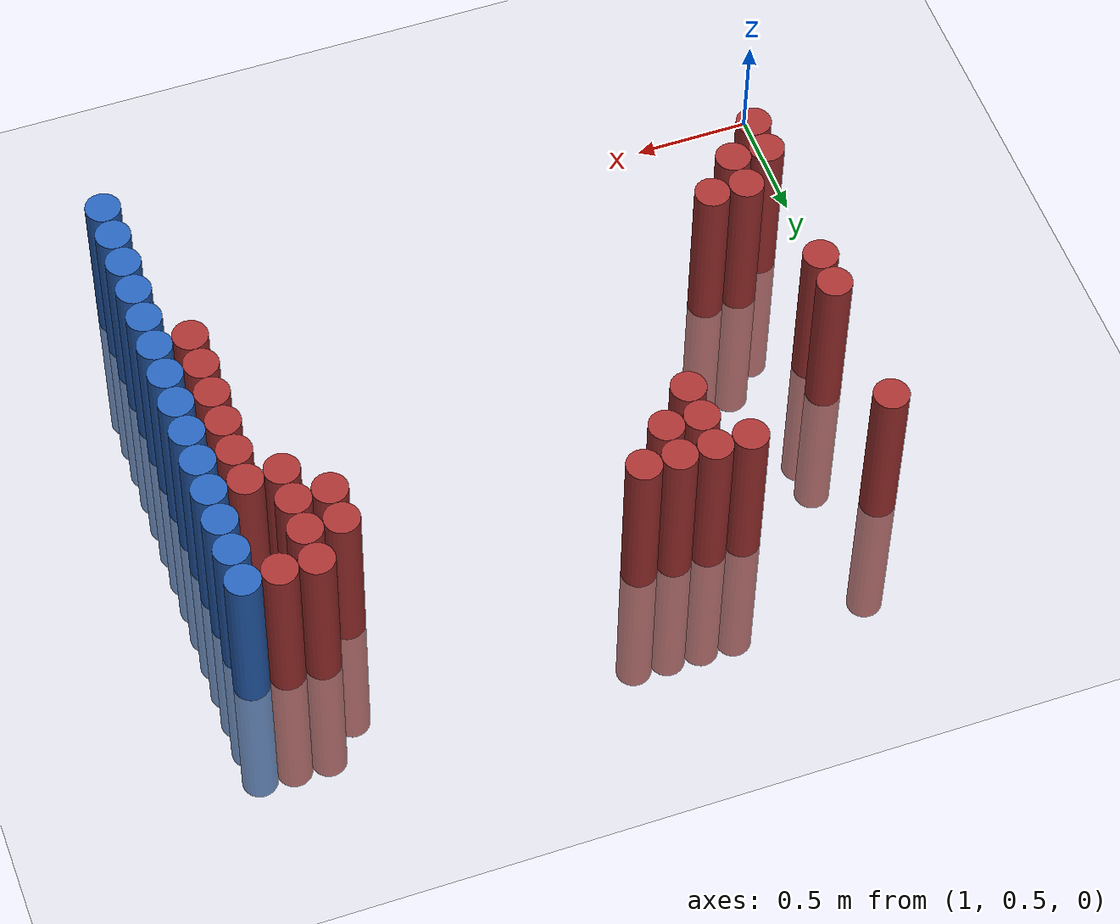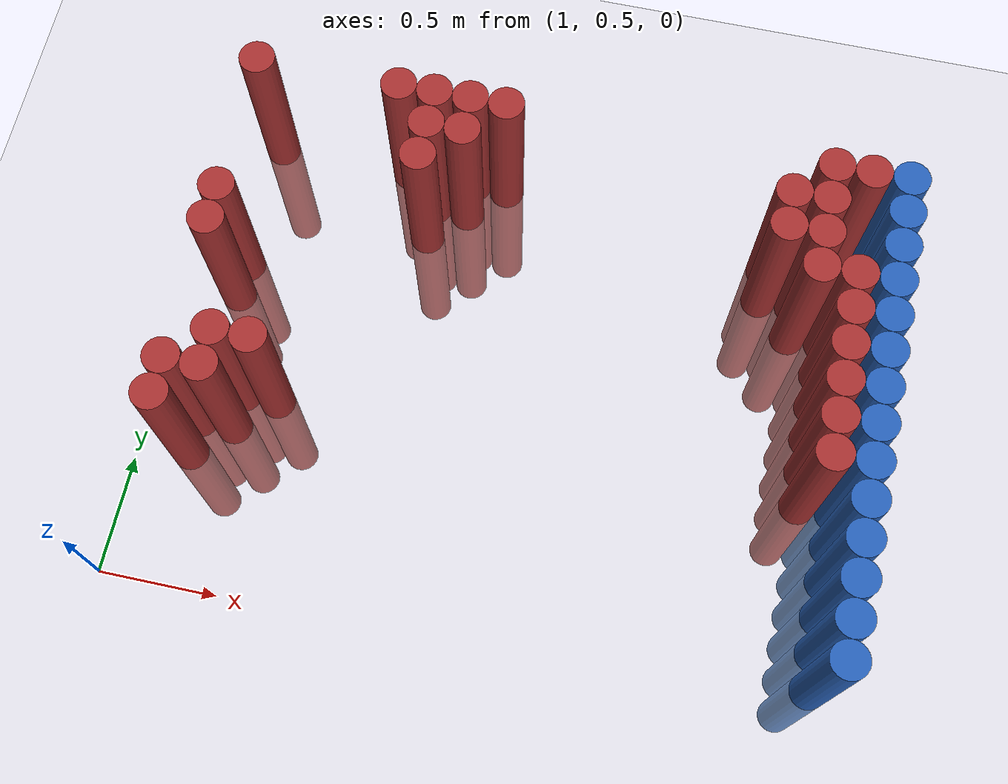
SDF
<sdf version="1.6">
 <world name="default">
  <model name="ground_plane">
   <static>1</static>
   <link name="link">
    <collision name="collision">
     <geometry><plane><normal>0 0 1</normal><size>100 100</size></plane></geometry>
     <surface><friction><ode><mu>100</mu><mu2>50</mu2></ode></friction></surface>
    </collision>
    <visual name="visual">
     <cast_shadows>0</cast_shadows>
     <geometry><plane><normal>0 0 1</normal><size>100 100</size></plane></geometry>
     <material>
      <script><uri>file://media/materials/scripts/gazebo.material</uri><name>Gazebo/Grey</name></script>
     </material>
    </visual>
   </link>
  </model>
  <model name="unit_cylinder_124">
   <static>1</static>
   <pose>3.925000 0.775000 0.000000 0.000000 0.000000 0.000000</pose>
   <link name="link">
    <inertial>
     <mass>1</mass>
     <inertia><ixx>0.145833</ixx><ixy>0</ixy><ixz>0</ixz><iyy>0.145833</iyy><iyz>0</iyz><izz>0.125</izz></inertia>
    </inertial>
    <collision name="collision">
     <geometry><cylinder><radius>0.075000</radius><length>1.5</length></cylinder></geometry>
    </collision>
    <visual name="visual">
     <geometry><cylinder><radius>0.075000</radius><length>1.5</length></cylinder></geometry>
     <material>
      <ambient>0.152000 0.379000 0.720000 1</ambient>
      <diffuse>0.152000 0.379000 0.720000 1</diffuse>
     </material>
     <material>
      <script><name>Gazebo/Grey</name><uri>file://media/materials/scripts/gazebo.material</uri></script>
     </material>
    </visual>
   </link>
  </model>
  <model name="unit_cylinder_126">
   <static>1</static>
   <pose>3.925000 0.925000 0.000000 0.000000 0.000000 0.000000</pose>
   <link name="link">
    <inertial>
     <mass>1</mass>
     <inertia><ixx>0.145833</ixx><ixy>0</ixy><ixz>0</ixz><iyy>0.145833</iyy><iyz>0</iyz><izz>0.125</izz></inertia>
    </inertial>
    <collision name="collision">
     <geometry><cylinder><radius>0.075000</radius><length>1.5</length></cylinder></geometry>
    </collision>
    <visual name="visual">
     <geometry><cylinder><radius>0.075000</radius><length>1.5</length></cylinder></geometry>
     <material>
      <ambient>0.152000 0.379000 0.720000 1</ambient>
      <diffuse>0.152000 0.379000 0.720000 1</diffuse>
     </material>
     <material>
      <script><name>Gazebo/Grey</name><uri>file://media/materials/scripts/gazebo.material</uri></script>
     </material>
    </visual>
   </link>
  </model>
  <model name="unit_cylinder_128">
   <static>1</static>
   <pose>3.925000 1.075000 0.000000 0.000000 0.000000 0.000000</pose>
   <link name="link">
    <inertial>
     <mass>1</mass>
     <inertia><ixx>0.145833</ixx><ixy>0</ixy><ixz>0</ixz><iyy>0.145833</iyy><iyz>0</iyz><izz>0.125</izz></inertia>
    </inertial>
    <collision name="collision">
     <geometry><cylinder><radius>0.075000</radius><length>1.5</length></cylinder></geometry>
    </collision>
    <visual name="visual">
     <geometry><cylinder><radius>0.075000</radius><length>1.5</length></cylinder></geometry>
     <material>
      <ambient>0.152000 0.379000 0.720000 1</ambient>
      <diffuse>0.152000 0.379000 0.720000 1</diffuse>
     </material>
     <material>
      <script><name>Gazebo/Grey</name><uri>file://media/materials/scripts/gazebo.material</uri></script>
     </material>
    </visual>
   </link>
  </model>
  <model name="unit_cylinder_130">
   <static>1</static>
   <pose>3.925000 1.225000 0.000000 0.000000 0.000000 0.000000</pose>
   <link name="link">
    <inertial>
     <mass>1</mass>
     <inertia><ixx>0.145833</ixx><ixy>0</ixy><ixz>0</ixz><iyy>0.145833</iyy><iyz>0</iyz><izz>0.125</izz></inertia>
    </inertial>
    <collision name="collision">
     <geometry><cylinder><radius>0.075000</radius><length>1.5</length></cylinder></geometry>
    </collision>
    <visual name="visual">
     <geometry><cylinder><radius>0.075000</radius><length>1.5</length></cylinder></geometry>
     <material>
      <ambient>0.152000 0.379000 0.720000 1</ambient>
      <diffuse>0.152000 0.379000 0.720000 1</diffuse>
     </material>
     <material>
      <script><name>Gazebo/Grey</name><uri>file://media/materials/scripts/gazebo.material</uri></script>
     </material>
    </visual>
   </link>
  </model>
  <model name="unit_cylinder_132">
   <static>1</static>
   <pose>3.925000 1.375000 0.000000 0.000000 0.000000 0.000000</pose>
   <link name="link">
    <inertial>
     <mass>1</mass>
     <inertia><ixx>0.145833</ixx><ixy>0</ixy><ixz>0</ixz><iyy>0.145833</iyy><iyz>0</iyz><izz>0.125</izz></inertia>
    </inertial>
    <collision name="collision">
     <geometry><cylinder><radius>0.075000</radius><length>1.5</length></cylinder></geometry>
    </collision>
    <visual name="visual">
     <geometry><cylinder><radius>0.075000</radius><length>1.5</length></cylinder></geometry>
     <material>
      <ambient>0.152000 0.379000 0.720000 1</ambient>
      <diffuse>0.152000 0.379000 0.720000 1</diffuse>
     </material>
     <material>
      <script><name>Gazebo/Grey</name><uri>file://media/materials/scripts/gazebo.material</uri></script>
     </material>
    </visual>
   </link>
  </model>
  <model name="unit_cylinder_134">
   <static>1</static>
   <pose>3.925000 1.525000 0.000000 0.000000 0.000000 0.000000</pose>
   <link name="link">
    <inertial>
     <mass>1</mass>
     <inertia><ixx>0.145833</ixx><ixy>0</ixy><ixz>0</ixz><iyy>0.145833</iyy><iyz>0</iyz><izz>0.125</izz></inertia>
    </inertial>
    <collision name="collision">
     <geometry><cylinder><radius>0.075000</radius><length>1.5</length></cylinder></geometry>
    </collision>
    <visual name="visual">
     <geometry><cylinder><radius>0.075000</radius><length>1.5</length></cylinder></geometry>
     <material>
      <ambient>0.152000 0.379000 0.720000 1</ambient>
      <diffuse>0.152000 0.379000 0.720000 1</diffuse>
     </material>
     <material>
      <script><name>Gazebo/Grey</name><uri>file://media/materials/scripts/gazebo.material</uri></script>
     </material>
    </visual>
   </link>
  </model>
  <model name="unit_cylinder_136">
   <static>1</static>
   <pose>3.925000 1.675000 0.000000 0.000000 0.000000 0.000000</pose>
   <link name="link">
    <inertial>
     <mass>1</mass>
     <inertia><ixx>0.145833</ixx><ixy>0</ixy><ixz>0</ixz><iyy>0.145833</iyy><iyz>0</iyz><izz>0.125</izz></inertia>
    </inertial>
    <collision name="collision">
     <geometry><cylinder><radius>0.075000</radius><length>1.5</length></cylinder></geometry>
    </collision>
    <visual name="visual">
     <geometry><cylinder><radius>0.075000</radius><length>1.5</length></cylinder></geometry>
     <material>
      <ambient>0.152000 0.379000 0.720000 1</ambient>
      <diffuse>0.152000 0.379000 0.720000 1</diffuse>
     </material>
     <material>
      <script><name>Gazebo/Grey</name><uri>file://media/materials/scripts/gazebo.material</uri></script>
     </material>
    </visual>
   </link>
  </model>
  <model name="unit_cylinder_138">
   <static>1</static>
   <pose>3.925000 1.825000 0.000000 0.000000 0.000000 0.000000</pose>
   <link name="link">
    <inertial>
     <mass>1</mass>
     <inertia><ixx>0.145833</ixx><ixy>0</ixy><ixz>0</ixz><iyy>0.145833</iyy><iyz>0</iyz><izz>0.125</izz></inertia>
    </inertial>
    <collision name="collision">
     <geometry><cylinder><radius>0.075000</radius><length>1.5</length></cylinder></geometry>
    </collision>
    <visual name="visual">
     <geometry><cylinder><radius>0.075000</radius><length>1.5</length></cylinder></geometry>
     <material>
      <ambient>0.152000 0.379000 0.720000 1</ambient>
      <diffuse>0.152000 0.379000 0.720000 1</diffuse>
     </material>
     <material>
      <script><name>Gazebo/Grey</name><uri>file://media/materials/scripts/gazebo.material</uri></script>
     </material>
    </visual>
   </link>
  </model>
  <model name="unit_cylinder_140">
   <static>1</static>
   <pose>3.925000 1.975000 0.000000 0.000000 0.000000 0.000000</pose>
   <link name="link">
    <inertial>
     <mass>1</mass>
     <inertia><ixx>0.145833</ixx><ixy>0</ixy><ixz>0</ixz><iyy>0.145833</iyy><iyz>0</iyz><izz>0.125</izz></inertia>
    </inertial>
    <collision name="collision">
     <geometry><cylinder><radius>0.075000</radius><length>1.5</length></cylinder></geometry>
    </collision>
    <visual name="visual">
     <geometry><cylinder><radius>0.075000</radius><length>1.5</length></cylinder></geometry>
     <material>
      <ambient>0.152000 0.379000 0.720000 1</ambient>
      <diffuse>0.152000 0.379000 0.720000 1</diffuse>
     </material>
     <material>
      <script><name>Gazebo/Grey</name><uri>file://media/materials/scripts/gazebo.material</uri></script>
     </material>
    </visual>
   </link>
  </model>
  <model name="unit_cylinder_142">
   <static>1</static>
   <pose>3.925000 2.125000 0.000000 0.000000 0.000000 0.000000</pose>
   <link name="link">
    <inertial>
     <mass>1</mass>
     <inertia><ixx>0.145833</ixx><ixy>0</ixy><ixz>0</ixz><iyy>0.145833</iyy><iyz>0</iyz><izz>0.125</izz></inertia>
    </inertial>
    <collision name="collision">
     <geometry><cylinder><radius>0.075000</radius><length>1.5</length></cylinder></geometry>
    </collision>
    <visual name="visual">
     <geometry><cylinder><radius>0.075000</radius><length>1.5</length></cylinder></geometry>
     <material>
      <ambient>0.152000 0.379000 0.720000 1</ambient>
      <diffuse>0.152000 0.379000 0.720000 1</diffuse>
     </material>
     <material>
      <script><name>Gazebo/Grey</name><uri>file://media/materials/scripts/gazebo.material</uri></script>
     </material>
    </visual>
   </link>
  </model>
  <model name="unit_cylinder_144">
   <static>1</static>
   <pose>3.925000 2.275000 0.000000 0.000000 0.000000 0.000000</pose>
   <link name="link">
    <inertial>
     <mass>1</mass>
     <inertia><ixx>0.145833</ixx><ixy>0</ixy><ixz>0</ixz><iyy>0.145833</iyy><iyz>0</iyz><izz>0.125</izz></inertia>
    </inertial>
    <collision name="collision">
     <geometry><cylinder><radius>0.075000</radius><length>1.5</length></cylinder></geometry>
    </collision>
    <visual name="visual">
     <geometry><cylinder><radius>0.075000</radius><length>1.5</length></cylinder></geometry>
     <material>
      <ambient>0.152000 0.379000 0.720000 1</ambient>
      <diffuse>0.152000 0.379000 0.720000 1</diffuse>
     </material>
     <material>
      <script><name>Gazebo/Grey</name><uri>file://media/materials/scripts/gazebo.material</uri></script>
     </material>
    </visual>
   </link>
  </model>
  <model name="unit_cylinder_146">
   <static>1</static>
   <pose>3.925000 2.425000 0.000000 0.000000 0.000000 0.000000</pose>
   <link name="link">
    <inertial>
     <mass>1</mass>
     <inertia><ixx>0.145833</ixx><ixy>0</ixy><ixz>0</ixz><iyy>0.145833</iyy><iyz>0</iyz><izz>0.125</izz></inertia>
    </inertial>
    <collision name="collision">
     <geometry><cylinder><radius>0.075000</radius><length>1.5</length></cylinder></geometry>
    </collision>
    <visual name="visual">
     <geometry><cylinder><radius>0.075000</radius><length>1.5</length></cylinder></geometry>
     <material>
      <ambient>0.152000 0.379000 0.720000 1</ambient>
      <diffuse>0.152000 0.379000 0.720000 1</diffuse>
     </material>
     <material>
      <script><name>Gazebo/Grey</name><uri>file://media/materials/scripts/gazebo.material</uri></script>
     </material>
    </visual>
   </link>
  </model>
  <model name="unit_cylinder_148">
   <static>1</static>
   <pose>3.925000 2.575000 0.000000 0.000000 0.000000 0.000000</pose>
   <link name="link">
    <inertial>
     <mass>1</mass>
     <inertia><ixx>0.145833</ixx><ixy>0</ixy><ixz>0</ixz><iyy>0.145833</iyy><iyz>0</iyz><izz>0.125</izz></inertia>
    </inertial>
    <collision name="collision">
     <geometry><cylinder><radius>0.075000</radius><length>1.5</length></cylinder></geometry>
    </collision>
    <visual name="visual">
     <geometry><cylinder><radius>0.075000</radius><length>1.5</length></cylinder></geometry>
     <material>
      <ambient>0.152000 0.379000 0.720000 1</ambient>
      <diffuse>0.152000 0.379000 0.720000 1</diffuse>
     </material>
     <material>
      <script><name>Gazebo/Grey</name><uri>file://media/materials/scripts/gazebo.material</uri></script>
     </material>
    </visual>
   </link>
  </model>
  <model name="unit_cylinder_449">
   <static>1</static>
   <pose>1.225000 1.075000 0.000000 0.000000 0.000000 0.000000</pose>
   <link name="link">
    <inertial>
     <mass>1</mass>
     <inertia><ixx>0.145833</ixx><ixy>0</ixy><ixz>0</ixz><iyy>0.145833</iyy><iyz>0</iyz><izz>0.125</izz></inertia>
    </inertial>
    <collision name="collision">
     <geometry><cylinder><radius>0.075000</radius><length>1.5</length></cylinder></geometry>
    </collision>
    <visual name="visual">
     <geometry><cylinder><radius>0.075000</radius><length>1.5</length></cylinder></geometry>
     <material>
      <ambient>0.648000 0.192000 0.192000 1</ambient>
      <diffuse>0.648000 0.192000 0.192000 1</diffuse>
     </material>
     <material>
      <script><name>Gazebo/Grey</name><uri>file://media/materials/scripts/gazebo.material</uri></script>
     </material>
    </visual>
   </link>
  </model>
  <model name="unit_cylinder_450">
   <static>1</static>
   <pose>1.225000 1.225000 0.000000 0.000000 0.000000 0.000000</pose>
   <link name="link">
    <inertial>
     <mass>1</mass>
     <inertia><ixx>0.145833</ixx><ixy>0</ixy><ixz>0</ixz><iyy>0.145833</iyy><iyz>0</iyz><izz>0.125</izz></inertia>
    </inertial>
    <collision name="collision">
     <geometry><cylinder><radius>0.075000</radius><length>1.5</length></cylinder></geometry>
    </collision>
    <visual name="visual">
     <geometry><cylinder><radius>0.075000</radius><length>1.5</length></cylinder></geometry>
     <material>
      <ambient>0.648000 0.192000 0.192000 1</ambient>
      <diffuse>0.648000 0.192000 0.192000 1</diffuse>
     </material>
     <material>
      <script><name>Gazebo/Grey</name><uri>file://media/materials/scripts/gazebo.material</uri></script>
     </material>
    </visual>
   </link>
  </model>
  <model name="unit_cylinder_451">
   <static>1</static>
   <pose>1.225000 1.825000 0.000000 0.000000 0.000000 0.000000</pose>
   <link name="link">
    <inertial>
     <mass>1</mass>
     <inertia><ixx>0.145833</ixx><ixy>0</ixy><ixz>0</ixz><iyy>0.145833</iyy><iyz>0</iyz><izz>0.125</izz></inertia>
    </inertial>
    <collision name="collision">
     <geometry><cylinder><radius>0.075000</radius><length>1.5</length></cylinder></geometry>
    </collision>
    <visual name="visual">
     <geometry><cylinder><radius>0.075000</radius><length>1.5</length></cylinder></geometry>
     <material>
      <ambient>0.648000 0.192000 0.192000 1</ambient>
      <diffuse>0.648000 0.192000 0.192000 1</diffuse>
     </material>
     <material>
      <script><name>Gazebo/Grey</name><uri>file://media/materials/scripts/gazebo.material</uri></script>
     </material>
    </visual>
   </link>
  </model>
  <model name="unit_cylinder_452">
   <static>1</static>
   <pose>1.225000 1.975000 0.000000 0.000000 0.000000 0.000000</pose>
   <link name="link">
    <inertial>
     <mass>1</mass>
     <inertia><ixx>0.145833</ixx><ixy>0</ixy><ixz>0</ixz><iyy>0.145833</iyy><iyz>0</iyz><izz>0.125</izz></inertia>
    </inertial>
    <collision name="collision">
     <geometry><cylinder><radius>0.075000</radius><length>1.5</length></cylinder></geometry>
    </collision>
    <visual name="visual">
     <geometry><cylinder><radius>0.075000</radius><length>1.5</length></cylinder></geometry>
     <material>
      <ambient>0.648000 0.192000 0.192000 1</ambient>
      <diffuse>0.648000 0.192000 0.192000 1</diffuse>
     </material>
     <material>
      <script><name>Gazebo/Grey</name><uri>file://media/materials/scripts/gazebo.material</uri></script>
     </material>
    </visual>
   </link>
  </model>
  <model name="unit_cylinder_453">
   <static>1</static>
   <pose>1.225000 2.575000 0.000000 0.000000 0.000000 0.000000</pose>
   <link name="link">
    <inertial>
     <mass>1</mass>
     <inertia><ixx>0.145833</ixx><ixy>0</ixy><ixz>0</ixz><iyy>0.145833</iyy><iyz>0</iyz><izz>0.125</izz></inertia>
    </inertial>
    <collision name="collision">
     <geometry><cylinder><radius>0.075000</radius><length>1.5</length></cylinder></geometry>
    </collision>
    <visual name="visual">
     <geometry><cylinder><radius>0.075000</radius><length>1.5</length></cylinder></geometry>
     <material>
      <ambient>0.648000 0.192000 0.192000 1</ambient>
      <diffuse>0.648000 0.192000 0.192000 1</diffuse>
     </material>
     <material>
      <script><name>Gazebo/Grey</name><uri>file://media/materials/scripts/gazebo.material</uri></script>
     </material>
    </visual>
   </link>
  </model>
  <model name="unit_cylinder_461">
   <static>1</static>
   <pose>1.375000 1.225000 0.000000 0.000000 0.000000 0.000000</pose>
   <link name="link">
    <inertial>
     <mass>1</mass>
     <inertia><ixx>0.145833</ixx><ixy>0</ixy><ixz>0</ixz><iyy>0.145833</iyy><iyz>0</iyz><izz>0.125</izz></inertia>
    </inertial>
    <collision name="collision">
     <geometry><cylinder><radius>0.075000</radius><length>1.5</length></cylinder></geometry>
    </collision>
    <visual name="visual">
     <geometry><cylinder><radius>0.075000</radius><length>1.5</length></cylinder></geometry>
     <material>
      <ambient>0.648000 0.192000 0.192000 1</ambient>
      <diffuse>0.648000 0.192000 0.192000 1</diffuse>
     </material>
     <material>
      <script><name>Gazebo/Grey</name><uri>file://media/materials/scripts/gazebo.material</uri></script>
     </material>
    </visual>
   </link>
  </model>
  <model name="unit_cylinder_462">
   <static>1</static>
   <pose>1.375000 1.375000 0.000000 0.000000 0.000000 0.000000</pose>
   <link name="link">
    <inertial>
     <mass>1</mass>
     <inertia><ixx>0.145833</ixx><ixy>0</ixy><ixz>0</ixz><iyy>0.145833</iyy><iyz>0</iyz><izz>0.125</izz></inertia>
    </inertial>
    <collision name="collision">
     <geometry><cylinder><radius>0.075000</radius><length>1.5</length></cylinder></geometry>
    </collision>
    <visual name="visual">
     <geometry><cylinder><radius>0.075000</radius><length>1.5</length></cylinder></geometry>
     <material>
      <ambient>0.648000 0.192000 0.192000 1</ambient>
      <diffuse>0.648000 0.192000 0.192000 1</diffuse>
     </material>
     <material>
      <script><name>Gazebo/Grey</name><uri>file://media/materials/scripts/gazebo.material</uri></script>
     </material>
    </visual>
   </link>
  </model>
  <model name="unit_cylinder_472">
   <static>1</static>
   <pose>1.525000 1.375000 0.000000 0.000000 0.000000 0.000000</pose>
   <link name="link">
    <inertial>
     <mass>1</mass>
     <inertia><ixx>0.145833</ixx><ixy>0</ixy><ixz>0</ixz><iyy>0.145833</iyy><iyz>0</iyz><izz>0.125</izz></inertia>
    </inertial>
    <collision name="collision">
     <geometry><cylinder><radius>0.075000</radius><length>1.5</length></cylinder></geometry>
    </collision>
    <visual name="visual">
     <geometry><cylinder><radius>0.075000</radius><length>1.5</length></cylinder></geometry>
     <material>
      <ambient>0.648000 0.192000 0.192000 1</ambient>
      <diffuse>0.648000 0.192000 0.192000 1</diffuse>
     </material>
     <material>
      <script><name>Gazebo/Grey</name><uri>file://media/materials/scripts/gazebo.material</uri></script>
     </material>
    </visual>
   </link>
  </model>
  <model name="unit_cylinder_480">
   <static>1</static>
   <pose>1.825000 2.575000 0.000000 0.000000 0.000000 0.000000</pose>
   <link name="link">
    <inertial>
     <mass>1</mass>
     <inertia><ixx>0.145833</ixx><ixy>0</ixy><ixz>0</ixz><iyy>0.145833</iyy><iyz>0</iyz><izz>0.125</izz></inertia>
    </inertial>
    <collision name="collision">
     <geometry><cylinder><radius>0.075000</radius><length>1.5</length></cylinder></geometry>
    </collision>
    <visual name="visual">
     <geometry><cylinder><radius>0.075000</radius><length>1.5</length></cylinder></geometry>
     <material>
      <ambient>0.648000 0.192000 0.192000 1</ambient>
      <diffuse>0.648000 0.192000 0.192000 1</diffuse>
     </material>
     <material>
      <script><name>Gazebo/Grey</name><uri>file://media/materials/scripts/gazebo.material</uri></script>
     </material>
    </visual>
   </link>
  </model>
  <model name="unit_cylinder_485">
   <static>1</static>
   <pose>1.975000 2.275000 0.000000 0.000000 0.000000 0.000000</pose>
   <link name="link">
    <inertial>
     <mass>1</mass>
     <inertia><ixx>0.145833</ixx><ixy>0</ixy><ixz>0</ixz><iyy>0.145833</iyy><iyz>0</iyz><izz>0.125</izz></inertia>
    </inertial>
    <collision name="collision">
     <geometry><cylinder><radius>0.075000</radius><length>1.5</length></cylinder></geometry>
    </collision>
    <visual name="visual">
     <geometry><cylinder><radius>0.075000</radius><length>1.5</length></cylinder></geometry>
     <material>
      <ambient>0.648000 0.192000 0.192000 1</ambient>
      <diffuse>0.648000 0.192000 0.192000 1</diffuse>
     </material>
     <material>
      <script><name>Gazebo/Grey</name><uri>file://media/materials/scripts/gazebo.material</uri></script>
     </material>
    </visual>
   </link>
  </model>
  <model name="unit_cylinder_486">
   <static>1</static>
   <pose>1.975000 2.425000 0.000000 0.000000 0.000000 0.000000</pose>
   <link name="link">
    <inertial>
     <mass>1</mass>
     <inertia><ixx>0.145833</ixx><ixy>0</ixy><ixz>0</ixz><iyy>0.145833</iyy><iyz>0</iyz><izz>0.125</izz></inertia>
    </inertial>
    <collision name="collision">
     <geometry><cylinder><radius>0.075000</radius><length>1.5</length></cylinder></geometry>
    </collision>
    <visual name="visual">
     <geometry><cylinder><radius>0.075000</radius><length>1.5</length></cylinder></geometry>
     <material>
      <ambient>0.648000 0.192000 0.192000 1</ambient>
      <diffuse>0.648000 0.192000 0.192000 1</diffuse>
     </material>
     <material>
      <script><name>Gazebo/Grey</name><uri>file://media/materials/scripts/gazebo.material</uri></script>
     </material>
    </visual>
   </link>
  </model>
  <model name="unit_cylinder_487">
   <static>1</static>
   <pose>1.975000 2.575000 0.000000 0.000000 0.000000 0.000000</pose>
   <link name="link">
    <inertial>
     <mass>1</mass>
     <inertia><ixx>0.145833</ixx><ixy>0</ixy><ixz>0</ixz><iyy>0.145833</iyy><iyz>0</iyz><izz>0.125</izz></inertia>
    </inertial>
    <collision name="collision">
     <geometry><cylinder><radius>0.075000</radius><length>1.5</length></cylinder></geometry>
    </collision>
    <visual name="visual">
     <geometry><cylinder><radius>0.075000</radius><length>1.5</length></cylinder></geometry>
     <material>
      <ambient>0.648000 0.192000 0.192000 1</ambient>
      <diffuse>0.648000 0.192000 0.192000 1</diffuse>
     </material>
     <material>
      <script><name>Gazebo/Grey</name><uri>file://media/materials/scripts/gazebo.material</uri></script>
     </material>
    </visual>
   </link>
  </model>
  <model name="unit_cylinder_489">
   <static>1</static>
   <pose>2.125000 2.425000 0.000000 0.000000 0.000000 0.000000</pose>
   <link name="link">
    <inertial>
     <mass>1</mass>
     <inertia><ixx>0.145833</ixx><ixy>0</ixy><ixz>0</ixz><iyy>0.145833</iyy><iyz>0</iyz><izz>0.125</izz></inertia>
    </inertial>
    <collision name="collision">
     <geometry><cylinder><radius>0.075000</radius><length>1.5</length></cylinder></geometry>
    </collision>
    <visual name="visual">
     <geometry><cylinder><radius>0.075000</radius><length>1.5</length></cylinder></geometry>
     <material>
      <ambient>0.648000 0.192000 0.192000 1</ambient>
      <diffuse>0.648000 0.192000 0.192000 1</diffuse>
     </material>
     <material>
      <script><name>Gazebo/Grey</name><uri>file://media/materials/scripts/gazebo.material</uri></script>
     </material>
    </visual>
   </link>
  </model>
  <model name="unit_cylinder_490">
   <static>1</static>
   <pose>2.125000 2.575000 0.000000 0.000000 0.000000 0.000000</pose>
   <link name="link">
    <inertial>
     <mass>1</mass>
     <inertia><ixx>0.145833</ixx><ixy>0</ixy><ixz>0</ixz><iyy>0.145833</iyy><iyz>0</iyz><izz>0.125</izz></inertia>
    </inertial>
    <collision name="collision">
     <geometry><cylinder><radius>0.075000</radius><length>1.5</length></cylinder></geometry>
    </collision>
    <visual name="visual">
     <geometry><cylinder><radius>0.075000</radius><length>1.5</length></cylinder></geometry>
     <material>
      <ambient>0.648000 0.192000 0.192000 1</ambient>
      <diffuse>0.648000 0.192000 0.192000 1</diffuse>
     </material>
     <material>
      <script><name>Gazebo/Grey</name><uri>file://media/materials/scripts/gazebo.material</uri></script>
     </material>
    </visual>
   </link>
  </model>
  <model name="unit_cylinder_498">
   <static>1</static>
   <pose>2.275000 2.575000 0.000000 0.000000 0.000000 0.000000</pose>
   <link name="link">
    <inertial>
     <mass>1</mass>
     <inertia><ixx>0.145833</ixx><ixy>0</ixy><ixz>0</ixz><iyy>0.145833</iyy><iyz>0</iyz><izz>0.125</izz></inertia>
    </inertial>
    <collision name="collision">
     <geometry><cylinder><radius>0.075000</radius><length>1.5</length></cylinder></geometry>
    </collision>
    <visual name="visual">
     <geometry><cylinder><radius>0.075000</radius><length>1.5</length></cylinder></geometry>
     <material>
      <ambient>0.648000 0.192000 0.192000 1</ambient>
      <diffuse>0.648000 0.192000 0.192000 1</diffuse>
     </material>
     <material>
      <script><name>Gazebo/Grey</name><uri>file://media/materials/scripts/gazebo.material</uri></script>
     </material>
    </visual>
   </link>
  </model>
  <model name="unit_cylinder_545">
   <static>1</static>
   <pose>3.475000 2.275000 0.000000 0.000000 0.000000 0.000000</pose>
   <link name="link">
    <inertial>
     <mass>1</mass>
     <inertia><ixx>0.145833</ixx><ixy>0</ixy><ixz>0</ixz><iyy>0.145833</iyy><iyz>0</iyz><izz>0.125</izz></inertia>
    </inertial>
    <collision name="collision">
     <geometry><cylinder><radius>0.075000</radius><length>1.5</length></cylinder></geometry>
    </collision>
    <visual name="visual">
     <geometry><cylinder><radius>0.075000</radius><length>1.5</length></cylinder></geometry>
     <material>
      <ambient>0.648000 0.192000 0.192000 1</ambient>
      <diffuse>0.648000 0.192000 0.192000 1</diffuse>
     </material>
     <material>
      <script><name>Gazebo/Grey</name><uri>file://media/materials/scripts/gazebo.material</uri></script>
     </material>
    </visual>
   </link>
  </model>
  <model name="unit_cylinder_546">
   <static>1</static>
   <pose>3.475000 2.425000 0.000000 0.000000 0.000000 0.000000</pose>
   <link name="link">
    <inertial>
     <mass>1</mass>
     <inertia><ixx>0.145833</ixx><ixy>0</ixy><ixz>0</ixz><iyy>0.145833</iyy><iyz>0</iyz><izz>0.125</izz></inertia>
    </inertial>
    <collision name="collision">
     <geometry><cylinder><radius>0.075000</radius><length>1.5</length></cylinder></geometry>
    </collision>
    <visual name="visual">
     <geometry><cylinder><radius>0.075000</radius><length>1.5</length></cylinder></geometry>
     <material>
      <ambient>0.648000 0.192000 0.192000 1</ambient>
      <diffuse>0.648000 0.192000 0.192000 1</diffuse>
     </material>
     <material>
      <script><name>Gazebo/Grey</name><uri>file://media/materials/scripts/gazebo.material</uri></script>
     </material>
    </visual>
   </link>
  </model>
  <model name="unit_cylinder_551">
   <static>1</static>
   <pose>3.625000 2.125000 0.000000 0.000000 0.000000 0.000000</pose>
   <link name="link">
    <inertial>
     <mass>1</mass>
     <inertia><ixx>0.145833</ixx><ixy>0</ixy><ixz>0</ixz><iyy>0.145833</iyy><iyz>0</iyz><izz>0.125</izz></inertia>
    </inertial>
    <collision name="collision">
     <geometry><cylinder><radius>0.075000</radius><length>1.5</length></cylinder></geometry>
    </collision>
    <visual name="visual">
     <geometry><cylinder><radius>0.075000</radius><length>1.5</length></cylinder></geometry>
     <material>
      <ambient>0.648000 0.192000 0.192000 1</ambient>
      <diffuse>0.648000 0.192000 0.192000 1</diffuse>
     </material>
     <material>
      <script><name>Gazebo/Grey</name><uri>file://media/materials/scripts/gazebo.material</uri></script>
     </material>
    </visual>
   </link>
  </model>
  <model name="unit_cylinder_552">
   <static>1</static>
   <pose>3.625000 2.275000 0.000000 0.000000 0.000000 0.000000</pose>
   <link name="link">
    <inertial>
     <mass>1</mass>
     <inertia><ixx>0.145833</ixx><ixy>0</ixy><ixz>0</ixz><iyy>0.145833</iyy><iyz>0</iyz><izz>0.125</izz></inertia>
    </inertial>
    <collision name="collision">
     <geometry><cylinder><radius>0.075000</radius><length>1.5</length></cylinder></geometry>
    </collision>
    <visual name="visual">
     <geometry><cylinder><radius>0.075000</radius><length>1.5</length></cylinder></geometry>
     <material>
      <ambient>0.648000 0.192000 0.192000 1</ambient>
      <diffuse>0.648000 0.192000 0.192000 1</diffuse>
     </material>
     <material>
      <script><name>Gazebo/Grey</name><uri>file://media/materials/scripts/gazebo.material</uri></script>
     </material>
    </visual>
   </link>
  </model>
  <model name="unit_cylinder_553">
   <static>1</static>
   <pose>3.625000 2.425000 0.000000 0.000000 0.000000 0.000000</pose>
   <link name="link">
    <inertial>
     <mass>1</mass>
     <inertia><ixx>0.145833</ixx><ixy>0</ixy><ixz>0</ixz><iyy>0.145833</iyy><iyz>0</iyz><izz>0.125</izz></inertia>
    </inertial>
    <collision name="collision">
     <geometry><cylinder><radius>0.075000</radius><length>1.5</length></cylinder></geometry>
    </collision>
    <visual name="visual">
     <geometry><cylinder><radius>0.075000</radius><length>1.5</length></cylinder></geometry>
     <material>
      <ambient>0.648000 0.192000 0.192000 1</ambient>
      <diffuse>0.648000 0.192000 0.192000 1</diffuse>
     </material>
     <material>
      <script><name>Gazebo/Grey</name><uri>file://media/materials/scripts/gazebo.material</uri></script>
     </material>
    </visual>
   </link>
  </model>
  <model name="unit_cylinder_554">
   <static>1</static>
   <pose>3.625000 2.575000 0.000000 0.000000 0.000000 0.000000</pose>
   <link name="link">
    <inertial>
     <mass>1</mass>
     <inertia><ixx>0.145833</ixx><ixy>0</ixy><ixz>0</ixz><iyy>0.145833</iyy><iyz>0</iyz><izz>0.125</izz></inertia>
    </inertial>
    <collision name="collision">
     <geometry><cylinder><radius>0.075000</radius><length>1.5</length></cylinder></geometry>
    </collision>
    <visual name="visual">
     <geometry><cylinder><radius>0.075000</radius><length>1.5</length></cylinder></geometry>
     <material>
      <ambient>0.648000 0.192000 0.192000 1</ambient>
      <diffuse>0.648000 0.192000 0.192000 1</diffuse>
     </material>
     <material>
      <script><name>Gazebo/Grey</name><uri>file://media/materials/scripts/gazebo.material</uri></script>
     </material>
    </visual>
   </link>
  </model>
  <model name="unit_cylinder_573">
   <static>1</static>
   <pose>3.775000 1.375000 0.000000 0.000000 0.000000 0.000000</pose>
   <link name="link">
    <inertial>
     <mass>1</mass>
     <inertia><ixx>0.145833</ixx><ixy>0</ixy><ixz>0</ixz><iyy>0.145833</iyy><iyz>0</iyz><izz>0.125</izz></inertia>
    </inertial>
    <collision name="collision">
     <geometry><cylinder><radius>0.075000</radius><length>1.5</length></cylinder></geometry>
    </collision>
    <visual name="visual">
     <geometry><cylinder><radius>0.075000</radius><length>1.5</length></cylinder></geometry>
     <material>
      <ambient>0.648000 0.192000 0.192000 1</ambient>
      <diffuse>0.648000 0.192000 0.192000 1</diffuse>
     </material>
     <material>
      <script><name>Gazebo/Grey</name><uri>file://media/materials/scripts/gazebo.material</uri></script>
     </material>
    </visual>
   </link>
  </model>
  <model name="unit_cylinder_574">
   <static>1</static>
   <pose>3.775000 1.525000 0.000000 0.000000 0.000000 0.000000</pose>
   <link name="link">
    <inertial>
     <mass>1</mass>
     <inertia><ixx>0.145833</ixx><ixy>0</ixy><ixz>0</ixz><iyy>0.145833</iyy><iyz>0</iyz><izz>0.125</izz></inertia>
    </inertial>
    <collision name="collision">
     <geometry><cylinder><radius>0.075000</radius><length>1.5</length></cylinder></geometry>
    </collision>
    <visual name="visual">
     <geometry><cylinder><radius>0.075000</radius><length>1.5</length></cylinder></geometry>
     <material>
      <ambient>0.648000 0.192000 0.192000 1</ambient>
      <diffuse>0.648000 0.192000 0.192000 1</diffuse>
     </material>
     <material>
      <script><name>Gazebo/Grey</name><uri>file://media/materials/scripts/gazebo.material</uri></script>
     </material>
    </visual>
   </link>
  </model>
  <model name="unit_cylinder_575">
   <static>1</static>
   <pose>3.775000 1.675000 0.000000 0.000000 0.000000 0.000000</pose>
   <link name="link">
    <inertial>
     <mass>1</mass>
     <inertia><ixx>0.145833</ixx><ixy>0</ixy><ixz>0</ixz><iyy>0.145833</iyy><iyz>0</iyz><izz>0.125</izz></inertia>
    </inertial>
    <collision name="collision">
     <geometry><cylinder><radius>0.075000</radius><length>1.5</length></cylinder></geometry>
    </collision>
    <visual name="visual">
     <geometry><cylinder><radius>0.075000</radius><length>1.5</length></cylinder></geometry>
     <material>
      <ambient>0.648000 0.192000 0.192000 1</ambient>
      <diffuse>0.648000 0.192000 0.192000 1</diffuse>
     </material>
     <material>
      <script><name>Gazebo/Grey</name><uri>file://media/materials/scripts/gazebo.material</uri></script>
     </material>
    </visual>
   </link>
  </model>
  <model name="unit_cylinder_576">
   <static>1</static>
   <pose>3.775000 1.825000 0.000000 0.000000 0.000000 0.000000</pose>
   <link name="link">
    <inertial>
     <mass>1</mass>
     <inertia><ixx>0.145833</ixx><ixy>0</ixy><ixz>0</ixz><iyy>0.145833</iyy><iyz>0</iyz><izz>0.125</izz></inertia>
    </inertial>
    <collision name="collision">
     <geometry><cylinder><radius>0.075000</radius><length>1.5</length></cylinder></geometry>
    </collision>
    <visual name="visual">
     <geometry><cylinder><radius>0.075000</radius><length>1.5</length></cylinder></geometry>
     <material>
      <ambient>0.648000 0.192000 0.192000 1</ambient>
      <diffuse>0.648000 0.192000 0.192000 1</diffuse>
     </material>
     <material>
      <script><name>Gazebo/Grey</name><uri>file://media/materials/scripts/gazebo.material</uri></script>
     </material>
    </visual>
   </link>
  </model>
  <model name="unit_cylinder_577">
   <static>1</static>
   <pose>3.775000 1.975000 0.000000 0.000000 0.000000 0.000000</pose>
   <link name="link">
    <inertial>
     <mass>1</mass>
     <inertia><ixx>0.145833</ixx><ixy>0</ixy><ixz>0</ixz><iyy>0.145833</iyy><iyz>0</iyz><izz>0.125</izz></inertia>
    </inertial>
    <collision name="collision">
     <geometry><cylinder><radius>0.075000</radius><length>1.5</length></cylinder></geometry>
    </collision>
    <visual name="visual">
     <geometry><cylinder><radius>0.075000</radius><length>1.5</length></cylinder></geometry>
     <material>
      <ambient>0.648000 0.192000 0.192000 1</ambient>
      <diffuse>0.648000 0.192000 0.192000 1</diffuse>
     </material>
     <material>
      <script><name>Gazebo/Grey</name><uri>file://media/materials/scripts/gazebo.material</uri></script>
     </material>
    </visual>
   </link>
  </model>
  <model name="unit_cylinder_578">
   <static>1</static>
   <pose>3.775000 2.125000 0.000000 0.000000 0.000000 0.000000</pose>
   <link name="link">
    <inertial>
     <mass>1</mass>
     <inertia><ixx>0.145833</ixx><ixy>0</ixy><ixz>0</ixz><iyy>0.145833</iyy><iyz>0</iyz><izz>0.125</izz></inertia>
    </inertial>
    <collision name="collision">
     <geometry><cylinder><radius>0.075000</radius><length>1.5</length></cylinder></geometry>
    </collision>
    <visual name="visual">
     <geometry><cylinder><radius>0.075000</radius><length>1.5</length></cylinder></geometry>
     <material>
      <ambient>0.648000 0.192000 0.192000 1</ambient>
      <diffuse>0.648000 0.192000 0.192000 1</diffuse>
     </material>
     <material>
      <script><name>Gazebo/Grey</name><uri>file://media/materials/scripts/gazebo.material</uri></script>
     </material>
    </visual>
   </link>
  </model>
  <model name="unit_cylinder_579">
   <static>1</static>
   <pose>3.775000 2.575000 0.000000 0.000000 0.000000 0.000000</pose>
   <link name="link">
    <inertial>
     <mass>1</mass>
     <inertia><ixx>0.145833</ixx><ixy>0</ixy><ixz>0</ixz><iyy>0.145833</iyy><iyz>0</iyz><izz>0.125</izz></inertia>
    </inertial>
    <collision name="collision">
     <geometry><cylinder><radius>0.075000</radius><length>1.5</length></cylinder></geometry>
    </collision>
    <visual name="visual">
     <geometry><cylinder><radius>0.075000</radius><length>1.5</length></cylinder></geometry>
     <material>
      <ambient>0.648000 0.192000 0.192000 1</ambient>
      <diffuse>0.648000 0.192000 0.192000 1</diffuse>
     </material>
     <material>
      <script><name>Gazebo/Grey</name><uri>file://media/materials/scripts/gazebo.material</uri></script>
     </material>
    </visual>
   </link>
  </model>
  <model name="unit_cylinder_609">
   <static>1</static>
   <pose>3.925000 0.625000 0.000000 0.000000 0.000000 0.000000</pose>
   <link name="link">
    <inertial>
     <mass>1</mass>
     <inertia><ixx>0.145833</ixx><ixy>0</ixy><ixz>0</ixz><iyy>0.145833</iyy><iyz>0</iyz><izz>0.125</izz></inertia>
    </inertial>
    <collision name="collision">
     <geometry><cylinder><radius>0.075000</radius><length>1.5</length></cylinder></geometry>
    </collision>
    <visual name="visual">
     <geometry><cylinder><radius>0.075000</radius><length>1.5</length></cylinder></geometry>
     <material>
      <ambient>0.152000 0.379000 0.720000 1</ambient>
      <diffuse>0.152000 0.379000 0.720000 1</diffuse>
     </material>
     <material>
      <script><name>Gazebo/Grey</name><uri>file://media/materials/scripts/gazebo.material</uri></script>
     </material>
    </visual>
   </link>
  </model>
  <model name="unit_cylinder_610">
   <static>1</static>
   <pose>3.925000 0.775000 0.000000 0.000000 0.000000 0.000000</pose>
   <link name="link">
    <inertial>
     <mass>1</mass>
     <inertia><ixx>0.145833</ixx><ixy>0</ixy><ixz>0</ixz><iyy>0.145833</iyy><iyz>0</iyz><izz>0.125</izz></inertia>
    </inertial>
    <collision name="collision">
     <geometry><cylinder><radius>0.075000</radius><length>1.5</length></cylinder></geometry>
    </collision>
    <visual name="visual">
     <geometry><cylinder><radius>0.075000</radius><length>1.5</length></cylinder></geometry>
     <material>
      <ambient>0.152000 0.379000 0.720000 1</ambient>
      <diffuse>0.152000 0.379000 0.720000 1</diffuse>
     </material>
     <material>
      <script><name>Gazebo/Grey</name><uri>file://media/materials/scripts/gazebo.material</uri></script>
     </material>
    </visual>
   </link>
  </model>
  <model name="unit_cylinder_611">
   <static>1</static>
   <pose>3.925000 0.925000 0.000000 0.000000 0.000000 0.000000</pose>
   <link name="link">
    <inertial>
     <mass>1</mass>
     <inertia><ixx>0.145833</ixx><ixy>0</ixy><ixz>0</ixz><iyy>0.145833</iyy><iyz>0</iyz><izz>0.125</izz></inertia>
    </inertial>
    <collision name="collision">
     <geometry><cylinder><radius>0.075000</radius><length>1.5</length></cylinder></geometry>
    </collision>
    <visual name="visual">
     <geometry><cylinder><radius>0.075000</radius><length>1.5</length></cylinder></geometry>
     <material>
      <ambient>0.152000 0.379000 0.720000 1</ambient>
      <diffuse>0.152000 0.379000 0.720000 1</diffuse>
     </material>
     <material>
      <script><name>Gazebo/Grey</name><uri>file://media/materials/scripts/gazebo.material</uri></script>
     </material>
    </visual>
   </link>
  </model>
  <model name="unit_cylinder_612">
   <static>1</static>
   <pose>3.925000 1.075000 0.000000 0.000000 0.000000 0.000000</pose>
   <link name="link">
    <inertial>
     <mass>1</mass>
     <inertia><ixx>0.145833</ixx><ixy>0</ixy><ixz>0</ixz><iyy>0.145833</iyy><iyz>0</iyz><izz>0.125</izz></inertia>
    </inertial>
    <collision name="collision">
     <geometry><cylinder><radius>0.075000</radius><length>1.5</length></cylinder></geometry>
    </collision>
    <visual name="visual">
     <geometry><cylinder><radius>0.075000</radius><length>1.5</length></cylinder></geometry>
     <material>
      <ambient>0.152000 0.379000 0.720000 1</ambient>
      <diffuse>0.152000 0.379000 0.720000 1</diffuse>
     </material>
     <material>
      <script><name>Gazebo/Grey</name><uri>file://media/materials/scripts/gazebo.material</uri></script>
     </material>
    </visual>
   </link>
  </model>
  <model name="unit_cylinder_613">
   <static>1</static>
   <pose>3.925000 1.225000 0.000000 0.000000 0.000000 0.000000</pose>
   <link name="link">
    <inertial>
     <mass>1</mass>
     <inertia><ixx>0.145833</ixx><ixy>0</ixy><ixz>0</ixz><iyy>0.145833</iyy><iyz>0</iyz><izz>0.125</izz></inertia>
    </inertial>
    <collision name="collision">
     <geometry><cylinder><radius>0.075000</radius><length>1.5</length></cylinder></geometry>
    </collision>
    <visual name="visual">
     <geometry><cylinder><radius>0.075000</radius><length>1.5</length></cylinder></geometry>
     <material>
      <ambient>0.152000 0.379000 0.720000 1</ambient>
      <diffuse>0.152000 0.379000 0.720000 1</diffuse>
     </material>
     <material>
      <script><name>Gazebo/Grey</name><uri>file://media/materials/scripts/gazebo.material</uri></script>
     </material>
    </visual>
   </link>
  </model>
  <model name="unit_cylinder_614">
   <static>1</static>
   <pose>3.925000 1.375000 0.000000 0.000000 0.000000 0.000000</pose>
   <link name="link">
    <inertial>
     <mass>1</mass>
     <inertia><ixx>0.145833</ixx><ixy>0</ixy><ixz>0</ixz><iyy>0.145833</iyy><iyz>0</iyz><izz>0.125</izz></inertia>
    </inertial>
    <collision name="collision">
     <geometry><cylinder><radius>0.075000</radius><length>1.5</length></cylinder></geometry>
    </collision>
    <visual name="visual">
     <geometry><cylinder><radius>0.075000</radius><length>1.5</length></cylinder></geometry>
     <material>
      <ambient>0.152000 0.379000 0.720000 1</ambient>
      <diffuse>0.152000 0.379000 0.720000 1</diffuse>
     </material>
     <material>
      <script><name>Gazebo/Grey</name><uri>file://media/materials/scripts/gazebo.material</uri></script>
     </material>
    </visual>
   </link>
  </model>
  <model name="unit_cylinder_615">
   <static>1</static>
   <pose>3.925000 1.525000 0.000000 0.000000 0.000000 0.000000</pose>
   <link name="link">
    <inertial>
     <mass>1</mass>
     <inertia><ixx>0.145833</ixx><ixy>0</ixy><ixz>0</ixz><iyy>0.145833</iyy><iyz>0</iyz><izz>0.125</izz></inertia>
    </inertial>
    <collision name="collision">
     <geometry><cylinder><radius>0.075000</radius><length>1.5</length></cylinder></geometry>
    </collision>
    <visual name="visual">
     <geometry><cylinder><radius>0.075000</radius><length>1.5</length></cylinder></geometry>
     <material>
      <ambient>0.152000 0.379000 0.720000 1</ambient>
      <diffuse>0.152000 0.379000 0.720000 1</diffuse>
     </material>
     <material>
      <script><name>Gazebo/Grey</name><uri>file://media/materials/scripts/gazebo.material</uri></script>
     </material>
    </visual>
   </link>
  </model>
  <model name="unit_cylinder_616">
   <static>1</static>
   <pose>3.925000 1.675000 0.000000 0.000000 0.000000 0.000000</pose>
   <link name="link">
    <inertial>
     <mass>1</mass>
     <inertia><ixx>0.145833</ixx><ixy>0</ixy><ixz>0</ixz><iyy>0.145833</iyy><iyz>0</iyz><izz>0.125</izz></inertia>
    </inertial>
    <collision name="collision">
     <geometry><cylinder><radius>0.075000</radius><length>1.5</length></cylinder></geometry>
    </collision>
    <visual name="visual">
     <geometry><cylinder><radius>0.075000</radius><length>1.5</length></cylinder></geometry>
     <material>
      <ambient>0.152000 0.379000 0.720000 1</ambient>
      <diffuse>0.152000 0.379000 0.720000 1</diffuse>
     </material>
     <material>
      <script><name>Gazebo/Grey</name><uri>file://media/materials/scripts/gazebo.material</uri></script>
     </material>
    </visual>
   </link>
  </model>
  <model name="unit_cylinder_617">
   <static>1</static>
   <pose>3.925000 1.825000 0.000000 0.000000 0.000000 0.000000</pose>
   <link name="link">
    <inertial>
     <mass>1</mass>
     <inertia><ixx>0.145833</ixx><ixy>0</ixy><ixz>0</ixz><iyy>0.145833</iyy><iyz>0</iyz><izz>0.125</izz></inertia>
    </inertial>
    <collision name="collision">
     <geometry><cylinder><radius>0.075000</radius><length>1.5</length></cylinder></geometry>
    </collision>
    <visual name="visual">
     <geometry><cylinder><radius>0.075000</radius><length>1.5</length></cylinder></geometry>
     <material>
      <ambient>0.152000 0.379000 0.720000 1</ambient>
      <diffuse>0.152000 0.379000 0.720000 1</diffuse>
     </material>
     <material>
      <script><name>Gazebo/Grey</name><uri>file://media/materials/scripts/gazebo.material</uri></script>
     </material>
    </visual>
   </link>
  </model>
  <model name="unit_cylinder_618">
   <static>1</static>
   <pose>3.925000 1.975000 0.000000 0.000000 0.000000 0.000000</pose>
   <link name="link">
    <inertial>
     <mass>1</mass>
     <inertia><ixx>0.145833</ixx><ixy>0</ixy><ixz>0</ixz><iyy>0.145833</iyy><iyz>0</iyz><izz>0.125</izz></inertia>
    </inertial>
    <collision name="collision">
     <geometry><cylinder><radius>0.075000</radius><length>1.5</length></cylinder></geometry>
    </collision>
    <visual name="visual">
     <geometry><cylinder><radius>0.075000</radius><length>1.5</length></cylinder></geometry>
     <material>
      <ambient>0.152000 0.379000 0.720000 1</ambient>
      <diffuse>0.152000 0.379000 0.720000 1</diffuse>
     </material>
     <material>
      <script><name>Gazebo/Grey</name><uri>file://media/materials/scripts/gazebo.material</uri></script>
     </material>
    </visual>
   </link>
  </model>
  <model name="unit_cylinder_619">
   <static>1</static>
   <pose>3.925000 2.125000 0.000000 0.000000 0.000000 0.000000</pose>
   <link name="link">
    <inertial>
     <mass>1</mass>
     <inertia><ixx>0.145833</ixx><ixy>0</ixy><ixz>0</ixz><iyy>0.145833</iyy><iyz>0</iyz><izz>0.125</izz></inertia>
    </inertial>
    <collision name="collision">
     <geometry><cylinder><radius>0.075000</radius><length>1.5</length></cylinder></geometry>
    </collision>
    <visual name="visual">
     <geometry><cylinder><radius>0.075000</radius><length>1.5</length></cylinder></geometry>
     <material>
      <ambient>0.152000 0.379000 0.720000 1</ambient>
      <diffuse>0.152000 0.379000 0.720000 1</diffuse>
     </material>
     <material>
      <script><name>Gazebo/Grey</name><uri>file://media/materials/scripts/gazebo.material</uri></script>
     </material>
    </visual>
   </link>
  </model>
  <model name="unit_cylinder_620">
   <static>1</static>
   <pose>3.925000 2.275000 0.000000 0.000000 0.000000 0.000000</pose>
   <link name="link">
    <inertial>
     <mass>1</mass>
     <inertia><ixx>0.145833</ixx><ixy>0</ixy><ixz>0</ixz><iyy>0.145833</iyy><iyz>0</iyz><izz>0.125</izz></inertia>
    </inertial>
    <collision name="collision">
     <geometry><cylinder><radius>0.075000</radius><length>1.5</length></cylinder></geometry>
    </collision>
    <visual name="visual">
     <geometry><cylinder><radius>0.075000</radius><length>1.5</length></cylinder></geometry>
     <material>
      <ambient>0.152000 0.379000 0.720000 1</ambient>
      <diffuse>0.152000 0.379000 0.720000 1</diffuse>
     </material>
     <material>
      <script><name>Gazebo/Grey</name><uri>file://media/materials/scripts/gazebo.material</uri></script>
     </material>
    </visual>
   </link>
  </model>
  <model name="unit_cylinder_621">
   <static>1</static>
   <pose>3.925000 2.425000 0.000000 0.000000 0.000000 0.000000</pose>
   <link name="link">
    <inertial>
     <mass>1</mass>
     <inertia><ixx>0.145833</ixx><ixy>0</ixy><ixz>0</ixz><iyy>0.145833</iyy><iyz>0</iyz><izz>0.125</izz></inertia>
    </inertial>
    <collision name="collision">
     <geometry><cylinder><radius>0.075000</radius><length>1.5</length></cylinder></geometry>
    </collision>
    <visual name="visual">
     <geometry><cylinder><radius>0.075000</radius><length>1.5</length></cylinder></geometry>
     <material>
      <ambient>0.152000 0.379000 0.720000 1</ambient>
      <diffuse>0.152000 0.379000 0.720000 1</diffuse>
     </material>
     <material>
      <script><name>Gazebo/Grey</name><uri>file://media/materials/scripts/gazebo.material</uri></script>
     </material>
    </visual>
   </link>
  </model>
 </world>
</sdf>
